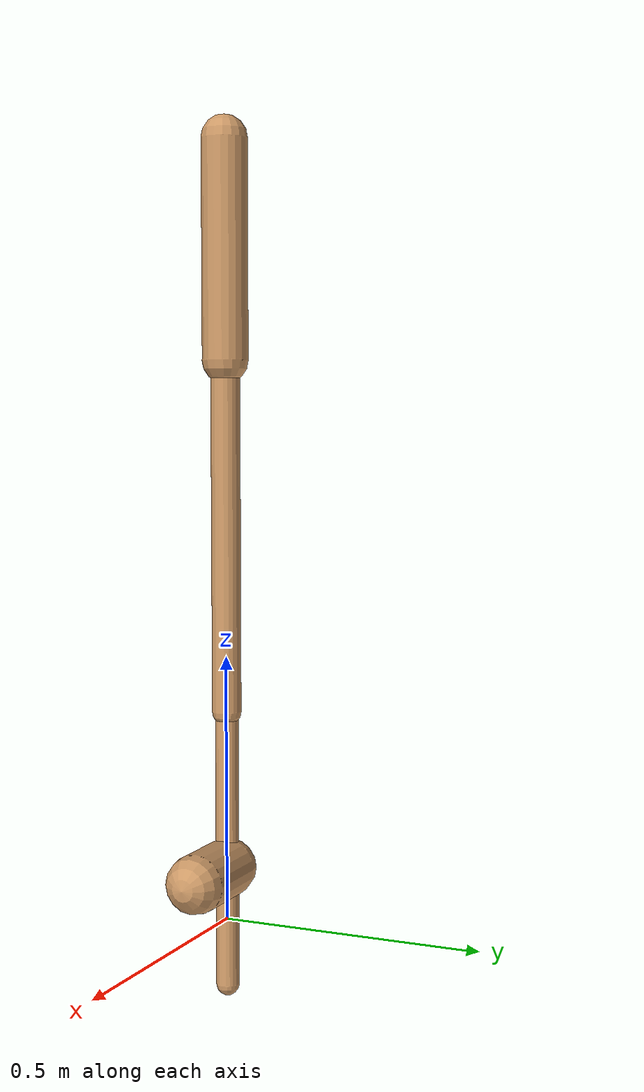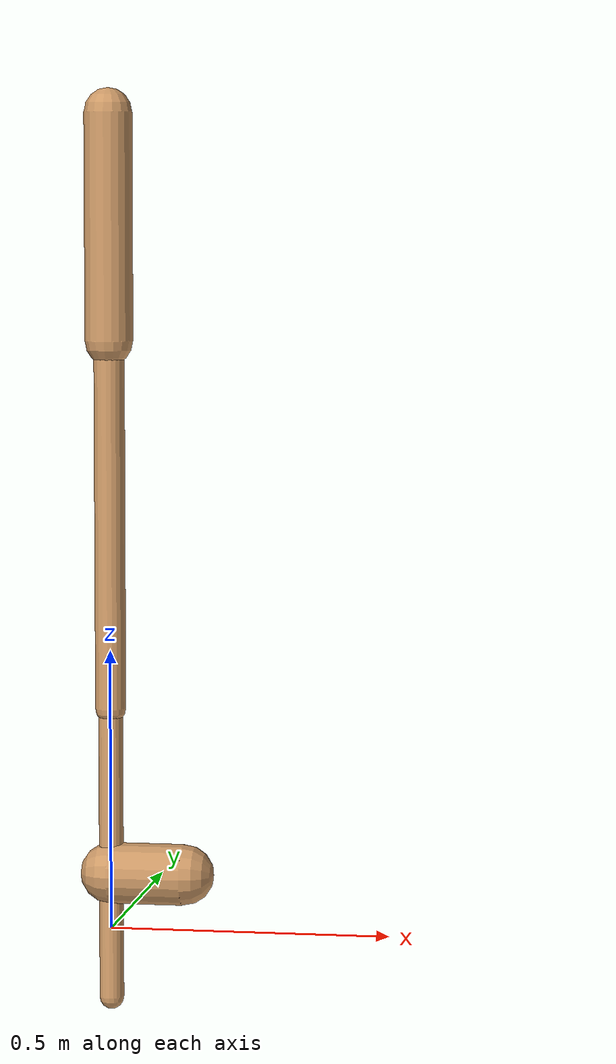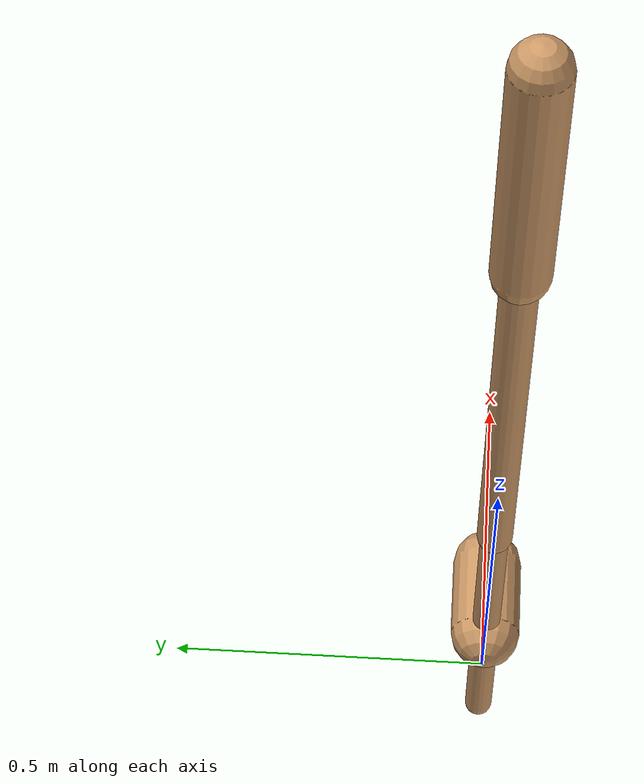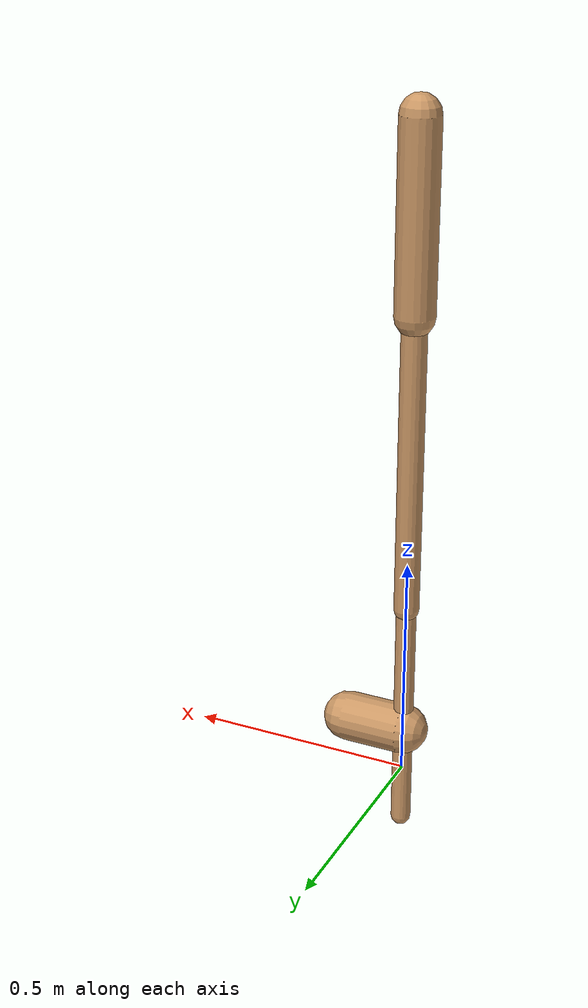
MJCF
<mujoco model="walker2d">
  <compiler angle="degree" coordinate="global" inertiafromgeom="true" />
  <default>
    <joint armature="0.01" damping=".1" limited="true" />
    <geom conaffinity="0" condim="3" contype="1" density="1000" friction="0.8 .1 .1" rgba="0.8 0.6 .4 1" />
  </default>
  <option integrator="RK4" timestep="0.002" />
  <worldbody>

    <body name="torso" pos="0 0 0.42851687343068406">
      <joint armature="0" axis="1 0 0" damping="0" limited="false" name="ignorex" pos="0 0 0" stiffness="0" type="slide" />
      <joint armature="0" axis="0 0 1" damping="0" limited="false" name="ignorez" pos="0 0 0" ref="1.25" stiffness="0" type="slide" />
      <joint armature="0" axis="0 1 0" damping="0" limited="false" name="ignorey" pos="0 0 0" stiffness="0" type="hinge" />
      <geom fromto="0 0 1.45 0 0 1.05" name="torso_geom" size="0.042761087674816046" type="capsule" />
      <body name="thigh">
        <joint axis="0 -1 0" name="thigh_joint" pos="0 0 1.05" range="-150 0" type="hinge" />
        <geom fromto="0.0 0.0 1.05 0.0 0.0 0.3970183231117812" name="thigh_geom" size="0.027267829915351816" type="capsule" />
        <body name="leg" pos="0.0 0.0 -0.20298167688821878">
          <joint axis="0 -1 0" name="leg_joint" pos="0 0 0.6" range="-150 0" type="hinge" />
          <geom fromto="0.0 0.0 0.6 0.0 0.0 -0.12553519654246528" name="leg_geom" size="0.021814263932281454" type="capsule" />
          <body name="foot" pos="0.0 0.0 -0.2255351965424653">
            <joint axis="0 -1 0" name="foot_joint" pos="0 0 0.1" range="-45 45" type="hinge" />
            <geom fromto="0.0 0.0 0.1 0.13105618425706714 0.0 0.1" name="foot_geom" size="0.05472451397977849" type="capsule" />
          </body>
        </body>
      </body>

      <body name="thigh_left">
        <joint axis="0 -1 0" name="thigh_left_joint" pos="0 0 1.05" range="-150 0" type="hinge" />
        <geom fromto="0.0 0.0 1.05 0.0 0.0 0.3970183231117812" name="thigh_left_geom" rgba=".7 .3 .6 1" size="0.027267829915351816" type="capsule" />
        <body name="leg_left" pos="0.0 0.0 -0.20298167688821878">
          <joint axis="0 -1 0" name="leg_left_joint" pos="0 0 0.6" range="-150 0" type="hinge" />
          <geom fromto="0.0 0.0 0.6 0.0 0.0 -0.12553519654246528" name="leg_left_geom" rgba=".7 .3 .6 1" size="0.021814263932281454" type="capsule" />
          <body name="foot_left" pos="0.0 0.0 -0.2255351965424653">
            <joint axis="0 -1 0" name="foot_left_joint" pos="0 0 0.1" range="-45 45" type="hinge" />
            <geom fromto="0.0 0.0 0.1 0.13105618425706714 0.0 0.1" name="foot_left_geom" rgba=".7 .3 .6 1" size="0.05472451397977849" type="capsule" />
          </body>
        </body>
      </body>
    </body>
  </worldbody>
  <actuator>

    <motor ctrllimited="true" ctrlrange="-1.0 1.0" gear="100" joint="thigh_joint" />
    <motor ctrllimited="true" ctrlrange="-1.0 1.0" gear="100" joint="leg_joint" />
    <motor ctrllimited="true" ctrlrange="-1.0 1.0" gear="100" joint="foot_joint" />
    <motor ctrllimited="true" ctrlrange="-1.0 1.0" gear="100" joint="thigh_left_joint" />
    <motor ctrllimited="true" ctrlrange="-1.0 1.0" gear="100" joint="leg_left_joint" />
    <motor ctrllimited="true" ctrlrange="-1.0 1.0" gear="100" joint="foot_left_joint" />

  </actuator>
</mujoco>
